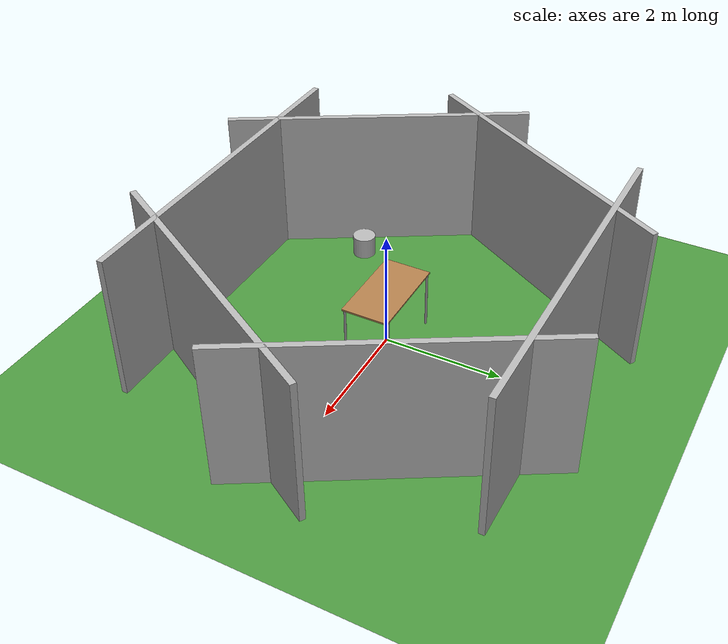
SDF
<sdf version="1.6">
 <world name="hexagon_room">
  <include><uri>model://sun</uri></include>
  <model name="hexagon_room_structure">
   <static>true</static>
   <link name="floor">
    <collision name="floor_collision">
     <geometry><plane><normal>0 0 1</normal><size>10 10</size></plane></geometry>
    </collision>
    <visual name="floor_visual">
     <geometry><plane><normal>0 0 1</normal><size>10 10</size></plane></geometry>
     <material>
      <script><uri>file://media/materials/scripts/gazebo.material</uri><name>Gazebo/Grass</name></script>
     </material>
    </visual>
   </link>
   <link name="wall_1">
    <pose>2.5981 1.5 1.25 0 0 -1.0472</pose>
    <collision name="collision"><geometry><box><size>5.196 0.1 2.5</size></box></geometry></collision>
    <visual name="visual"><geometry><box><size>5.196 0.1 2.5</size></box></geometry></visual>
   </link>
   <link name="wall_2">
    <pose>2.5981 -1.5 1.25 0 0 -2.0944</pose>
    <collision name="collision"><geometry><box><size>5.196 0.1 2.5</size></box></geometry></collision>
    <visual name="visual"><geometry><box><size>5.196 0.1 2.5</size></box></geometry></visual>
   </link>
   <link name="wall_3">
    <pose>0 -3 1.25 0 0 3.1416</pose>
    <collision name="collision"><geometry><box><size>6 0.1 2.5</size></box></geometry></collision>
    <visual name="visual"><geometry><box><size>6 0.1 2.5</size></box></geometry></visual>
   </link>
   <link name="wall_4">
    <pose>-2.5981 -1.5 1.25 0 0 2.0944</pose>
    <collision name="collision"><geometry><box><size>5.196 0.1 2.5</size></box></geometry></collision>
    <visual name="visual"><geometry><box><size>5.196 0.1 2.5</size></box></geometry></visual>
   </link>
   <link name="wall_5">
    <pose>-2.5981 1.5 1.25 0 0 1.0472</pose>
    <collision name="collision"><geometry><box><size>5.196 0.1 2.5</size></box></geometry></collision>
    <visual name="visual"><geometry><box><size>5.196 0.1 2.5</size></box></geometry></visual>
   </link>
   <link name="wall_6">
    <pose>0 3 1.25 0 0 0</pose>
    <collision name="collision"><geometry><box><size>6 0.1 2.5</size></box></geometry></collision>
    <visual name="visual"><geometry><box><size>6 0.1 2.5</size></box></geometry></visual>
   </link>
  </model>
  <include><uri>model://table</uri></include>
  <include><uri>model://lamp</uri><pose>2 -1.5 0 0 0 -0.5236</pose></include>
  <include><uri>model://plant</uri><pose>-2 -1.5 0 0 0 2.6180</pose></include>
 </world>
</sdf>

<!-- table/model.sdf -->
<sdf version="1.5">
  <model name="table">
    <static>true</static>
    <link name="link">
      <collision name="surface">
        <pose>0 0 1.0 0 0 0</pose>
        <geometry>
          <box>
            <size>1.5 0.8 0.03</size>
          </box>
        </geometry>
        <surface>
          <friction>
            <ode>
              <mu>0.6</mu>
              <mu2>0.6</mu2>
            </ode>
          </friction>
        </surface>
      </collision>
      <visual name="visual1">
        <pose>0 0 1.0 0 0 0</pose>
        <geometry>
          <box>
            <size>1.5 0.8 0.03</size>
          </box>
        </geometry>
        <material>
          <script>
            <uri>model://media/materials/scripts/gazebo.material</uri>
            <name>Gazebo/Wood</name>
          </script>
        </material>
      </visual>
      <collision name="front_left_leg">
        <pose>0.68 0.38 0.5 0 0 0</pose>
        <geometry>
          <cylinder>
            <radius>0.02</radius>
            <length>1.0</length>
          </cylinder>
        </geometry>
      </collision>
      <visual name="front_left_leg">
        <pose>0.68 0.38 0.5 0 0 0</pose>
        <geometry>
          <cylinder>
            <radius>0.02</radius>
            <length>1.0</length>
          </cylinder>
        </geometry>
        <material>
          <script>
            <uri>model://media/materials/scripts/gazebo.material</uri>
            <name>Gazebo/Grey</name>
          </script>
        </material>
      </visual>
      <collision name="front_right_leg">
        <pose>0.68 -0.38 0.5 0 0 0</pose>
        <geometry>
          <cylinder>
            <radius>0.02</radius>
            <length>1.0</length>
          </cylinder>
        </geometry>
      </collision>
      <visual name="front_right_leg">
        <pose>0.68 -0.38 0.5 0 0 0</pose>
        <geometry>
          <cylinder>
            <radius>0.02</radius>
            <length>1.0</length>
          </cylinder>
        </geometry>
        <material>
          <script>
            <uri>model://media/materials/scripts/gazebo.material</uri>
            <name>Gazebo/Grey</name>
          </script>
        </material>
      </visual>
      <collision name="back_right_leg">
        <pose>-0.68 -0.38 0.5 0 0 0</pose>
        <geometry>
          <cylinder>
            <radius>0.02</radius>
            <length>1.0</length>
          </cylinder>
        </geometry>
      </collision>
      <visual name="back_right_leg">
        <pose>-0.68 -0.38 0.5 0 0 0</pose>
        <geometry>
          <cylinder>
            <radius>0.02</radius>
            <length>1.0</length>
          </cylinder>
        </geometry>
        <material>
          <script>
            <uri>model://media/materials/scripts/gazebo.material</uri>
            <name>Gazebo/Grey</name>
          </script>
        </material>
      </visual>
      <collision name="back_left_leg">
        <pose>-0.68 0.38 0.5 0 0 0</pose>
        <geometry>
          <cylinder>
            <radius>0.02</radius>
            <length>1.0</length>
          </cylinder>
        </geometry>
      </collision>
      <visual name="back_left_leg">
        <pose>-0.68 0.38 0.5 0 0 0</pose>
        <geometry>
          <cylinder>
            <radius>0.02</radius>
            <length>1.0</length>
          </cylinder>
        </geometry>
        <material>
          <script>
            <uri>model://media/materials/scripts/gazebo.material</uri>
            <name>Gazebo/Grey</name>
          </script>
        </material>
      </visual>
    </link>
  </model>
</sdf>

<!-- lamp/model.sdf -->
<sdf version="1.6">
  <model name="rwc2023/lamp">
    <static>true</static>
    <link name="2_link">
      <collision name="2_col">
        <geometry>
            <cylinder>
                <radius>0.015</radius>
                <length>1.5</length>
            </cylinder>
        </geometry>
      </collision>
      <visual name="2_vis">
        <geometry>
            <cylinder>
                <radius>0.015</radius>
                <length>1.5</length>
            </cylinder>
        </geometry>
      </visual>
      <pose>0.0 0.0 0.75 0 0 0</pose>
    </link>
  </model>
</sdf>

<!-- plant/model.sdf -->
<sdf version="1.6">
  <model name="robotics_testlabs/plant">
    <link name="1_link">
      <collision name="1_col">
        <geometry>
          <cylinder>
            <length>0.375</length>
            <radius>0.2</radius>
          </cylinder>
        </geometry>
      </collision>
      <visual name="1_vis">
        <geometry>
          <cylinder>
            <length>0.375</length>
            <radius>0.2</radius>
          </cylinder>
        </geometry>
      </visual>
      <pose>0 0 0.1875 0 0 0</pose>
    </link>
    <static>true</static>
  </model>
</sdf>
